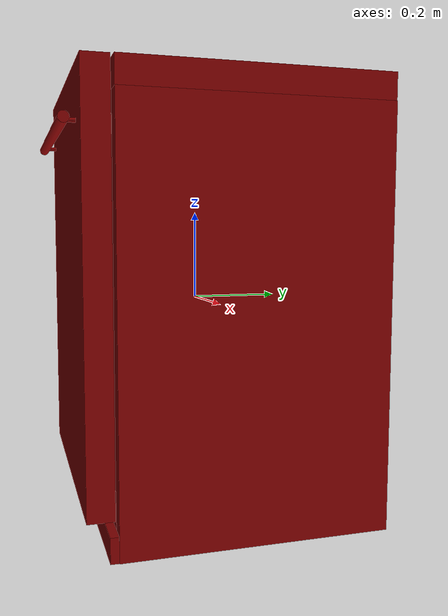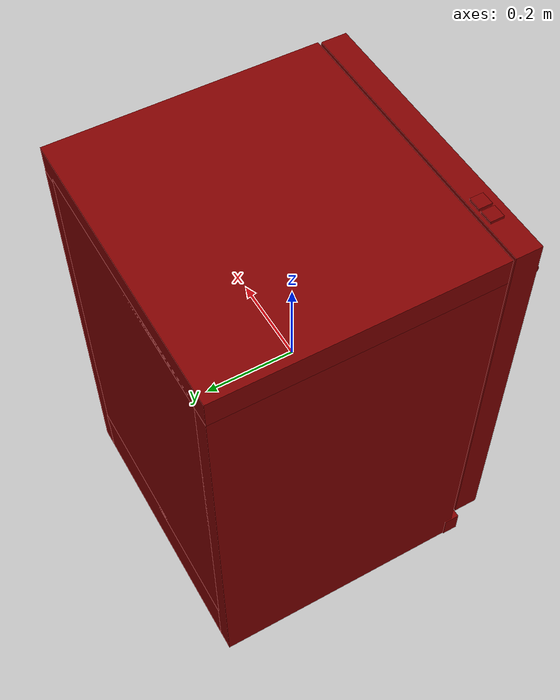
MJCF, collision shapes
<mujoco model="model">
  <compiler angle="radian"/>
  <asset>
    <mesh file="visuals/Body001.obj" name="Body001_vis"/>
    <mesh file="visuals/Button001.obj" name="Button001_vis"/>
    <mesh file="visuals/Button002.obj" name="Button002_vis"/>
    <mesh file="visuals/Door001.obj" name="Door001_vis"/>
    <mesh file="visuals/Shelf001.obj" name="Shelf001_vis"/>
    <mesh file="visuals/Shelf002.obj" name="Shelf002_vis"/>
    <texture file="visuals/T_BC001.png" name="Body001_material" type="2d"/>
    <material name="Body001_material" rgba="1 1 1 1.0" texture="Body001_material" shininess="2" specular="2"/>
    <texture file="visuals/T_BC001.png" name="Door001_material" type="2d"/>
    <material name="Door001_material" rgba="1 1 1 1.0" texture="Door001_material" shininess="2" specular="2"/>
    <texture file="visuals/T_BC001.png" name="Button001_material" type="2d"/>
    <material name="Button001_material" rgba="1 1 1 1.0" texture="Button001_material" shininess="3" specular="3"/>
    <texture file="visuals/T_BC001.png" name="Button002_material" type="2d"/>
    <material name="Button002_material" rgba="1 1 1 1.0" texture="Button002_material" shininess="3" specular="3"/>
    <texture file="visuals/T_BC001.png" name="Shelf001_material" type="2d"/>
    <material name="Shelf001_material" rgba="1 1 1 1.0" texture="Shelf001_material" shininess="4" specular="4"/>
    <texture file="visuals/T_BC001.png" name="Shelf002_material" type="2d"/>
    <material name="Shelf002_material" rgba="1 1 1 1.0" texture="Shelf002_material" shininess="4" specular="4"/>
  </asset>
  <default>
    <default class="visual">
      <geom conaffinity="0" contype="0" group="1" type="mesh"/>
    </default>
    <default class="collision">
      <geom group="0" rgba="0.5 0 0 0.5"/>
    </default>
    <default class="spawn">
      <geom group="0" rgba="1 1 1 0.5" contype="0" conaffinity="0"/>
      <site group="0" rgba="1 1 1 0.5"/>
    </default>
    <default class="region">
      <geom group="1" conaffinity="0" contype="0" rgba="0 1 0 0"/>
    </default>
  </default>
  <worldbody>
    <body>
      <body name="object">
        <geom mesh="Body001_vis" type="mesh" solimp="0.998 0.998 0.001" solref="0.001 1" density="100" friction="0.95 0.3 0.1" class="visual" material="Body001_material"/>
        <geom class="collision" type="box" pos="-0.000440 0.050442 0.452777" size="0.3221323490142822 0.29266059398651123 0.029606247320771217" quat="1.0 0.0 0.0 0.0"/>
        <geom class="collision" type="box" pos="-0.302135 0.050442 -0.033094" size="0.02043696492910385 0.29266059398651123 0.4574581980705261" quat="1.0 0.0 0.0 0.0"/>
        <geom class="collision" type="box" pos="0.303043 0.050442 -0.033094" size="0.02043696492910385 0.29266059398651123 0.4574581980705261" quat="1.0 0.0 0.0 0.0"/>
        <geom class="collision" type="box" pos="0.000923 0.050442 -0.424646" size="0.2853509485721588 0.29266059398651123 0.06590571999549866" quat="1.0 0.0 0.0 0.0"/>
        <geom class="collision" type="box" pos="-0.001810 -0.242672 -0.463658" size="0.3231350779533386 0.01744447462260723 0.026894353330135345" quat="1.0 0.0 0.0 0.0"/>
        <geom class="collision" type="box" pos="0.000923 0.302347 0.031012" size="0.2853509187698364 0.04075564444065094 0.40389174222946167" quat="1.0 0.0 0.0 0.0"/>
        <geom class="collision" type="box" pos="0.000923 0.019582 0.389888" size="0.2853509485721588 0.2225317507982254 0.045015353709459305" quat="1.0 0.0 0.0 0.0"/>
        <body name="Door001">
          <joint axis="1.0 0.0 0.0" pos="-0.004138 -0.243389 -0.413558" limited="true" name="Door001_joint" range="0.0 0.5235987755982988" type="hinge" damping="1" frictionloss="1" armature=".01" stiffness="10" springref="-10"/>
          <geom mesh="Door001_vis" type="mesh" solimp="0.998 0.998 0.001" solref="0.001 1" density="100" friction="0.95 0.3 0.1" class="visual" material="Door001_material"/>
          <geom class="collision" type="box" pos="-0.001003 -0.277061 0.037852" size="0.32054319977760315 0.028157562017440796 0.4435419738292694" quat="1.0 0.0 0.0 0.0"/>
          <geom class="collision" type="cylinder" pos="-0.002610 -0.332204 0.369191" size="0.011335549876093864 0.28749722242355347" quat="0.4999999701976776 0.5 -0.5 -0.5"/>
          <geom class="collision" type="cylinder" pos="0.245290 -0.316903 0.369008" size="0.004390311427414417 0.011076605878770351" quat="0.5 0.5 0.4999999701976776 -0.5"/>
          <geom class="collision" type="cylinder" pos="-0.250692 -0.316903 0.369008" size="0.004390311427414417 0.011076605878770351" quat="0.5 0.5 0.4999999701976776 -0.5"/>
          <geom class="collision" type="box" pos="-0.001971 -0.251059 -0.002907" size="0.2672194838523865 0.028157562017440796 0.3456015884876251" quat="1.0 0.0 0.0 0.0"/>
          <body name="Button001">
            <joint axis="0.0 0.0 -1.0" pos="-0.223082 -0.269129 0.483876" limited="true" name="Button001_joint" range="0.0 0.004" type="slide" damping="1" frictionloss="1" armature=".01" stiffness="0.2" springref="-1"/>
            <geom mesh="Button001_vis" type="mesh" solimp="0.998 0.998 0.001" solref="0.001 1" density="100" friction="0.95 0.3 0.1" class="visual" material="Button001_material"/>
            <geom class="collision" type="box" pos="-0.223282 -0.269063 0.487599" size="0.014550353400409222 0.014460163190960884 0.002818668494001031" quat="1.0 0.0 0.0 0.0"/>
          </body>
          <body name="Button002">
            <joint axis="0.0 0.0 -1.0" pos="-0.188662 -0.269129 0.483876" limited="true" name="Button002_joint" range="0.0 0.004" type="slide" damping="1" frictionloss="1" armature=".01" stiffness="0.05" springref="-1"/>
            <geom mesh="Button002_vis" type="mesh" solimp="0.998 0.998 0.001" solref="0.001 1" density="100" friction="0.95 0.3 0.1" class="visual" material="Button002_material"/>
            <geom class="collision" type="box" pos="-0.188655 -0.269063 0.487599" size="0.014550353400409222 0.014460163190960884 0.002818668494001031" quat="1.0 0.0 0.0 0.0"/>
          </body>
        </body>
        <body name="Shelf001">
          <joint axis="0.0 -1.0 0.0" pos="-0.002066 0.014742 0.093105" limited="true" name="Shelf001_joint" range="0.0 0.3" type="slide" damping="1" frictionloss="1" armature=".01" stiffness="0.05"/>
          <geom mesh="Shelf001_vis" type="mesh" solimp="0.998 0.998 0.001" solref="0.001 1" density="100" friction="0.95 0.3 0.1" class="visual" material="Shelf001_material"/>
          <geom class="collision" type="box" pos="-0.004392 0.217734 0.088824" size="0.2579573690891266 0.006477130576968193 0.11864884942770004" quat="1.0 0.0 0.0 0.0"/>
          <geom class="collision" type="box" pos="-0.004392 -0.192252 0.088824" size="0.2579573690891266 0.006477130576968193 0.11864884942770004" quat="1.0 0.0 0.0 0.0"/>
          <geom class="collision" type="box" pos="-0.260581 0.010160 0.088824" size="0.005006011575460434 0.20593230426311493 0.11864884942770004" quat="1.0 0.0 0.0 0.0"/>
          <geom class="collision" type="box" pos="0.258393 0.010160 0.088824" size="0.005006011575460434 0.20593230426311493 0.11864884942770004" quat="1.0 0.0 0.0 0.0"/>
          <geom class="collision" type="box" pos="-0.001585 0.010160 -0.020430" size="0.25733524560928345 0.20593231916427612 0.00695856474339962" quat="1.0 0.0 0.0 0.0"/>
        </body>
        <body name="Shelf002">
          <joint axis="0.0 -1.0 0.0" pos="-0.002066 0.014742 -0.226585" limited="true" name="Shelf002_joint" range="0.0 0.3" type="slide" damping="1" frictionloss="1" armature=".01" stiffness="0.05"/>
          <geom mesh="Shelf002_vis" type="mesh" solimp="0.998 0.998 0.001" solref="0.001 1" density="100" friction="0.95 0.3 0.1" class="visual" material="Shelf002_material"/>
          <geom class="collision" type="box" pos="-0.001585 0.010160 -0.308895" size="0.25733524560928345 0.20593231916427612 0.00695856474339962" quat="1.0 0.0 0.0 0.0"/>
          <geom class="collision" type="box" pos="0.258393 0.010160 -0.224244" size="0.005006011575460434 0.20593230426311493 0.0940459743142128" quat="1.0 0.0 0.0 0.0"/>
          <geom class="collision" type="box" pos="-0.260581 0.010160 -0.224244" size="0.005006011575460434 0.20593230426311493 0.0940459743142128" quat="1.0 0.0 0.0 0.0"/>
          <geom class="collision" type="box" pos="-0.004392 -0.192252 -0.224244" size="0.2579573690891266 0.006477130576968193 0.0940459743142128" quat="1.0 0.0 0.0 0.0"/>
          <geom class="collision" type="box" pos="-0.004392 0.217734 -0.224244" size="0.2579573690891266 0.006477130576968193 0.0940459743142128" quat="1.0 0.0 0.0 0.0"/>
        </body>
        <geom class="region" name="reg_main" type="box" pos="0.0 0.018037500000000012 -0.003387000000000001" size="0.322122 0.3224905 0.48617600000000005"/>
        <geom class="region" name="reg_int" type="box" pos="0.00014000000000000123 0.015018000000000004 0.035667000000000004" size="0.27746400000000004 0.248553 0.384604"/>
      </body>
    </body>
  </worldbody>
  <actuator>
    <motor name="Door001_joint_actuator" joint="Door001_joint" gear="50"/>
    <motor name="Shelf001_joint_actuator" joint="Shelf001_joint" gear="10"/>
    <motor name="Shelf002_joint_actuator" joint="Shelf002_joint" gear="10"/>
    <motor name="Button001_joint_actuator" joint="Button001_joint" gear="0.5"/>
    <motor name="Button002_joint_actuator" joint="Button002_joint" gear="0.5"/>
  </actuator>
</mujoco>
